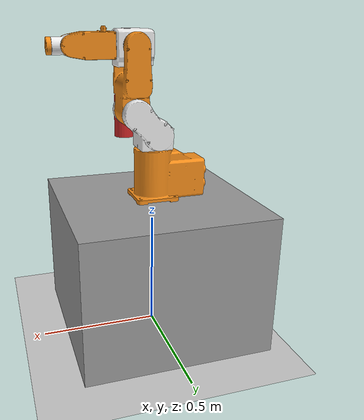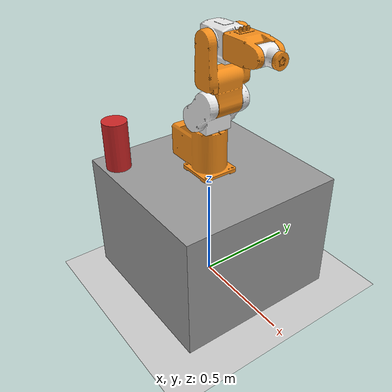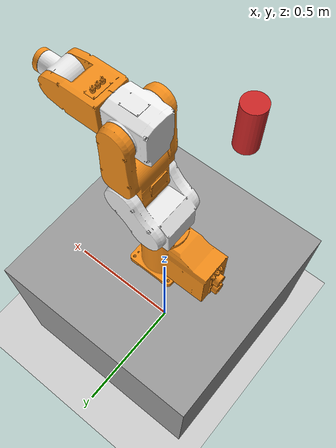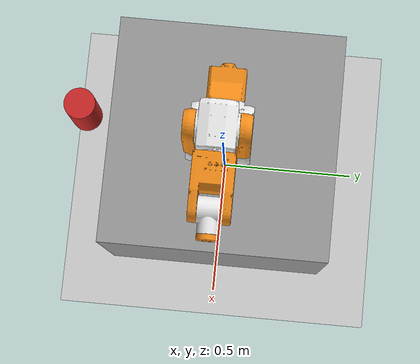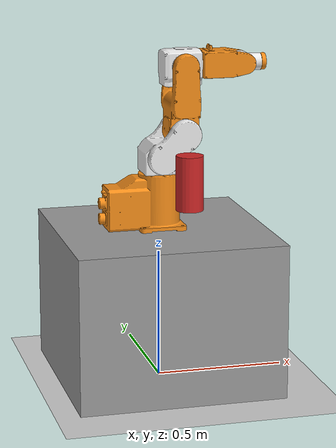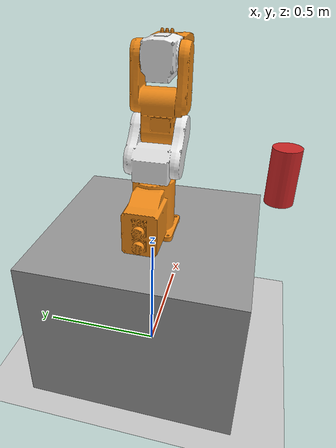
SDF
<sdf version="1.6">
 <world name="rr_world">
  <plugin filename="libgazebo_ros_world_control.so" name="world_control_plugin"/>
  <include><uri>model://sun</uri></include>
  <include><uri>model://ground_plane</uri></include>
  <model name="can">
   <pose>0.0 -0.45 0.875 0 0 0</pose>
   <static>true</static>
   <link name="link">
    <visual name="visual">
     <geometry><cylinder><radius>0.05</radius><length>0.2</length></cylinder></geometry>
     <material>
      <script><name>Gazebo/Red</name><uri>file://media/materials/scripts/gazebo.material</uri></script>
     </material>
    </visual>
   </link>
  </model>
  <model name="cam_1">
   <pose>1.009464 -1.101092 1.505751 0.071688 0.490246 2.440701</pose>
   <include><uri>model://fix_camera</uri></include>
  </model>
  <model name="cam_2">
   <pose>-0.356332 -1.588751 1.863204 0.111956 0.690027 1.281356</pose>
   <include><uri>model://fix_camera</uri></include>
  </model>
  <model name="rr_arm"><include><uri>model://rr6</uri></include></model>
 </world>
</sdf>

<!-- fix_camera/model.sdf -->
<sdf version="1.4">
  <model name="camera">
    <static>true</static>
    <pose>0 0 0 -1.5707963267948966 0 -1.5707963267948966</pose>
    <link name="link">
      <pose>0 0 0 0 0 0</pose>
          <sensor type="camera" name="my_sensor">
            <update_rate>10</update_rate>
          <pose>0 0 0 0 -1.5707963267948966 1.5707963267948966</pose>
          <camera>
            <horizontal_fov>1.047198</horizontal_fov>
            <image>
              <width>1280</width>
              <height>960</height>
            </image>
            <clip>
              <near>0.001</near>
              <far>10</far>
            </clip>
          </camera>
          <plugin filename="libgazebo_ros_rgb_camera.so" name="camera_plugin" />
          <always_on>1</always_on>
          <visualize>true</visualize>
        </sensor>

    </link>
  </model>
</sdf>

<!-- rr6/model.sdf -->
<sdf version='1.6'>
  <model name='rr6'>
    <link name='table_link'>
      <pose frame=''>0 0 0.6 0 -0 0</pose>
      <inertial>
        <pose frame=''>-0.000409 -0 0.000507 0 -0 0</pose>
        <mass>1005.14</mass>
        <inertia>
          <ixx>74.2514</ixx>
          <ixy>1.43459e-06</ixy>
          <ixz>0.0385426</ixz>
          <iyy>74.3223</iyy>
          <iyz>6.71673e-06</iyz>
          <izz>106.764</izz>
        </inertia>
      </inertial>
      <collision name='table_link_collision'>
        <pose frame=''>0 0 -0.25 0 -0 0</pose>
        <geometry>
          <box>
            <size>0.8 0.8 0.5</size>
          </box>
        </geometry>
        <surface>
          <contact>
            <ode/>
          </contact>
          <friction>
            <ode/>
          </friction>
        </surface>
      </collision>
      <collision name='table_link_fixed_joint_lump__rr6_link0_collision_1'>
        <pose frame=''>0 0 0 0 -0 0</pose>
        <geometry>
          <mesh>
            <scale>1 1 1</scale>
            <uri>model://rr6/meshes/rr6_link0.STL</uri>
          </mesh>
        </geometry>
        <surface>
          <contact>
            <ode/>
          </contact>
          <friction>
            <ode/>
          </friction>
        </surface>
      </collision>
      <visual name='table_link_visual'>
        <pose frame=''>0 0 -0.3 0 -0 0</pose>
        <geometry>
          <box>
            <size>0.8 0.8 0.6</size>
          </box>
        </geometry>
        <material>
          <script>
            <name>Gazebo/Grey</name>
            <uri>file://rr6/materials/scripts/gazebo.material</uri>
          </script>
        </material>
      </visual>
      <visual name='table_link_fixed_joint_lump__rr6_link0_visual_1'>
        <pose frame=''>0 0 0 0 -0 0</pose>
        <geometry>
          <mesh>
            <scale>1 1 1</scale>
            <uri>model://rr6/meshes/rr6_link0.STL</uri>
          </mesh>
        </geometry>
        <material>
          <script>
            <name>Gazebo/Orange</name>
            <uri>file://rr6/materials/scripts/gazebo.material</uri>
          </script>
        </material>
      </visual>
      <velocity_decay/>
      <self_collide>0</self_collide>
      <gravity>1</gravity>
      <velocity_decay/>
    </link>
    <joint name='fixed1' type='fixed'>
      <child>table_link</child>
      <parent>world</parent>
    </joint>
    <link name='rr6_link1'>
      <pose frame=''>0 0 0.96989 0 -0 0</pose>
      <inertial>
        <pose frame=''>0.023895 -0.002519 -0.068699 0 -0 0</pose>
        <mass>2.00634</mass>
        <inertia>
          <ixx>0.0143834</ixx>
          <ixy>0.000402838</ixy>
          <ixz>-0.00291028</ixz>
          <iyy>0.0135733</iyy>
          <iyz>0.000283167</iyz>
          <izz>0.0145487</izz>
        </inertia>
      </inertial>
      <collision name='rr6_link1_collision'>
        <pose frame=''>0 0 0 0 -0 0</pose>
        <geometry>
          <mesh>
            <scale>1 1 1</scale>
            <uri>model://rr6/meshes/rr6_link1.STL</uri>
          </mesh>
        </geometry>
        <surface>
          <contact>
            <ode/>
          </contact>
          <friction>
            <ode/>
          </friction>
        </surface>
      </collision>
      <visual name='rr6_link1_visual'>
        <pose frame=''>0 0 0 0 -0 0</pose>
        <geometry>
          <mesh>
            <scale>1 1 1</scale>
            <uri>model://rr6/meshes/rr6_link1.STL</uri>
          </mesh>
        </geometry>
        <material>
          <script>
            <name>Gazebo/White</name>
            <uri>file://rr6/materials/scripts/gazebo.material</uri>
          </script>
        </material>
      </visual>
      <gravity>1</gravity>
      <velocity_decay/>
    </link>
    <joint name='rr6_joint1' type='revolute'>
      <child>rr6_link1</child>
      <parent>table_link</parent>
      <axis>
        <xyz>0 0 1</xyz>
        <limit>
          <lower>-3.14159</lower>
          <upper>3.14159</upper>
          <effort>635993</effort>
          <velocity>8.72665</velocity>
        </limit>
        <dynamics>
          <spring_reference>0</spring_reference>
          <spring_stiffness>0</spring_stiffness>
        </dynamics>
        <use_parent_model_frame>1</use_parent_model_frame>
      </axis>
    </joint>
    <link name='rr6_link2'>
      <pose frame=''>0.0884 0 0.96989 1.57079 -1.57079 3.14159</pose>
      <inertial>
        <pose frame=''>0.101428 0.000333 0.002303 0 -0 0</pose>
        <mass>2.5441</mass>
        <inertia>
          <ixx>0.0123848</ixx>
          <ixy>6.29791e-05</ixy>
          <ixz>5.21448e-05</ixz>
          <iyy>0.0314854</iyy>
          <iyz>1.28638e-05</iyz>
          <izz>0.0269248</izz>
        </inertia>
      </inertial>
      <collision name='rr6_link2_collision'>
        <pose frame=''>0 0 0 0 -0 0</pose>
        <geometry>
          <mesh>
            <scale>1 1 1</scale>
            <uri>model://rr6/meshes/rr6_link2.STL</uri>
          </mesh>
        </geometry>
        <surface>
          <contact>
            <ode/>
          </contact>
          <friction>
            <ode/>
          </friction>
        </surface>
      </collision>
      <visual name='rr6_link2_visual'>
        <pose frame=''>0 0 0 0 -0 0</pose>
        <geometry>
          <mesh>
            <scale>1 1 1</scale>
            <uri>model://rr6/meshes/rr6_link2.STL</uri>
          </mesh>
        </geometry>
        <material>
          <script>
            <name>Gazebo/Orange</name>
            <uri>file://rr6/materials/scripts/gazebo.material</uri>
          </script>
        </material>
      </visual>
      <gravity>1</gravity>
      <velocity_decay/>
    </link>
    <joint name='rr6_joint2' type='revolute'>
      <child>rr6_link2</child>
      <parent>rr6_link1</parent>
      <axis>
        <xyz>-0 1 -0</xyz>
        <limit>
          <lower>-0.890118</lower>
          <upper>2.19999</upper>
          <effort>460906</effort>
          <velocity>8.72665</velocity>
        </limit>
        <dynamics>
          <spring_reference>0</spring_reference>
          <spring_stiffness>0</spring_stiffness>
        </dynamics>
        <use_parent_model_frame>1</use_parent_model_frame>
      </axis>
    </joint>
    <link name='rr6_link3'>
      <pose frame=''>0.0884 0 1.22989 1.57079 -1.57079 3.14159</pose>
      <inertial>
        <pose frame=''>-0.008125 0.011638 0.001883 0 -0 0</pose>
        <mass>1.17218</mass>
        <inertia>
          <ixx>0.00438154</ixx>
          <ixy>-1.41093e-05</ixy>
          <ixz>-2.08226e-05</ixz>
          <iyy>0.00455094</iyy>
          <iyz>-3.32515e-05</iyz>
          <izz>0.00492817</izz>
        </inertia>
      </inertial>
      <collision name='rr6_link3_collision'>
        <pose frame=''>0 0 0 0 -0 0</pose>
        <geometry>
          <mesh>
            <scale>1 1 1</scale>
            <uri>model://rr6/meshes/rr6_link3.STL</uri>
          </mesh>
        </geometry>
        <surface>
          <contact>
            <ode/>
          </contact>
          <friction>
            <ode/>
          </friction>
        </surface>
      </collision>
      <visual name='rr6_link3_visual'>
        <pose frame=''>0 0 0 0 -0 0</pose>
        <geometry>
          <mesh>
            <scale>1 1 1</scale>
            <uri>model://rr6/meshes/rr6_link3.STL</uri>
          </mesh>
        </geometry>
        <material>
          <script>
            <name>Gazebo/White</name>
            <uri>file://rr6/materials/scripts/gazebo.material</uri>
          </script>
        </material>
      </visual>
      <gravity>1</gravity>
      <velocity_decay/>
    </link>
    <joint name='rr6_joint3' type='revolute'>
      <child>rr6_link3</child>
      <parent>rr6_link2</parent>
      <axis>
        <xyz>-0 1 -0</xyz>
        <limit>
          <lower>-3.59992</lower>
          <upper>0.59987</upper>
          <effort>238892</effort>
          <velocity>8.72665</velocity>
        </limit>
        <dynamics>
          <spring_reference>0</spring_reference>
          <spring_stiffness>0</spring_stiffness>
        </dynamics>
        <use_parent_model_frame>1</use_parent_model_frame>
      </axis>
    </joint>
    <link name='rr6_link4'>
      <pose frame=''>0.3294 0 1.22989 0 -1.57079 3.14159</pose>
      <inertial>
        <pose frame=''>0.004664 0.004229 -0.088618 0 -0 0</pose>
        <mass>1.04031</mass>
        <inertia>
          <ixx>0.00527621</ixx>
          <ixy>5.38548e-05</ixy>
          <ixz>0.000185559</ixz>
          <iyy>0.00518564</iyy>
          <iyz>-0.00018345</iyz>
          <izz>0.00282202</izz>
        </inertia>
      </inertial>
      <collision name='rr6_link4_collision'>
        <pose frame=''>0 0 0 0 -0 0</pose>
        <geometry>
          <mesh>
            <scale>1 1 1</scale>
            <uri>model://rr6/meshes/rr6_link4.STL</uri>
          </mesh>
        </geometry>
        <surface>
          <contact>
            <ode/>
          </contact>
          <friction>
            <ode/>
          </friction>
        </surface>
      </collision>
      <visual name='rr6_link4_visual'>
        <pose frame=''>0 0 0 0 -0 0</pose>
        <geometry>
          <mesh>
            <scale>1 1 1</scale>
            <uri>model://rr6/meshes/rr6_link4.STL</uri>
          </mesh>
        </geometry>
        <material>
          <script>
            <name>Gazebo/Orange</name>
            <uri>file://rr6/materials/scripts/gazebo.material</uri>
          </script>
        </material>
      </visual>
      <gravity>1</gravity>
      <velocity_decay/>
    </link>
    <joint name='rr6_joint4' type='revolute'>
      <child>rr6_link4</child>
      <parent>rr6_link3</parent>
      <axis>
        <xyz>1 0 -0</xyz>
        <limit>
          <lower>-3.14159</lower>
          <upper>3.14159</upper>
          <effort>136599</effort>
          <velocity>8.72665</velocity>
        </limit>
        <dynamics>
          <spring_reference>0</spring_reference>
          <spring_stiffness>0</spring_stiffness>
        </dynamics>
        <use_parent_model_frame>1</use_parent_model_frame>
      </axis>
    </joint>
    <link name='rr6_link5'>
      <pose frame=''>0.3294 0 1.22989 1.57079 -1.57079 3.14159</pose>
      <inertial>
        <pose frame=''>-1e-05 0.014655 -0.001176 0 -0 0</pose>
        <mass>0.49536</mass>
        <inertia>
          <ixx>0.000610482</ixx>
          <ixy>2.41428e-07</ixy>
          <ixz>1.50483e-07</ixz>
          <iyy>0.000428578</iyy>
          <iyz>-8.79101e-06</iyz>
          <izz>0.000740887</izz>
        </inertia>
      </inertial>
      <collision name='rr6_link5_collision'>
        <pose frame=''>0 0 0 0 -0 0</pose>
        <geometry>
          <mesh>
            <scale>1 1 1</scale>
            <uri>model://rr6/meshes/rr6_link5.STL</uri>
          </mesh>
        </geometry>
        <surface>
          <contact>
            <ode/>
          </contact>
          <friction>
            <ode/>
          </friction>
        </surface>
      </collision>
      <visual name='rr6_link5_visual'>
        <pose frame=''>0 0 0 0 -0 0</pose>
        <geometry>
          <mesh>
            <scale>1 1 1</scale>
            <uri>model://rr6/meshes/rr6_link5.STL</uri>
          </mesh>
        </geometry>
        <material>
          <script>
            <name>Gazebo/White</name>
            <uri>file://rr6/materials/scripts/gazebo.material</uri>
          </script>
        </material>
      </visual>
      <gravity>1</gravity>
      <velocity_decay/>
    </link>
    <joint name='rr6_joint5' type='revolute'>
      <child>rr6_link5</child>
      <parent>rr6_link4</parent>
      <axis>
        <xyz>-0 1 -0</xyz>
        <limit>
          <lower>-1.74533</lower>
          <upper>1.74533</upper>
          <effort>45815.3</effort>
          <velocity>8.72665</velocity>
        </limit>
        <dynamics>
          <spring_reference>0</spring_reference>
          <spring_stiffness>0</spring_stiffness>
        </dynamics>
        <use_parent_model_frame>1</use_parent_model_frame>
      </axis>
    </joint>
    <link name='rr6_link6'>
      <pose frame=''>0.4184 0 1.22989 0 -1.57079 3.14159</pose>
      <inertial>
        <pose frame=''>0 -4.9e-05 -0.006095 0 -0 0</pose>
        <mass>0.0296445</mass>
        <inertia>
          <ixx>9.71075e-06</ixx>
          <ixy>-1.16765e-13</ixy>
          <ixz>4.13768e-15</ixz>
          <iyy>9.75718e-06</iyy>
          <iyz>-7.41228e-09</iyz>
          <izz>1.83481e-05</izz>
        </inertia>
      </inertial>
      <collision name='rr6_link6_collision'>
        <pose frame=''>0 0 0 0 -0 0</pose>
        <geometry>
          <mesh>
            <scale>1 1 1</scale>
            <uri>model://rr6/meshes/rr6_link6.STL</uri>
          </mesh>
        </geometry>
        <surface>
          <contact>
            <ode/>
          </contact>
          <friction>
            <ode/>
          </friction>
        </surface>
      </collision>
      <visual name='rr6_link6_visual'>
        <pose frame=''>0 0 0 0 -0 0</pose>
        <geometry>
          <mesh>
            <scale>1 1 1</scale>
            <uri>model://rr6/meshes/rr6_link6.STL</uri>
          </mesh>
        </geometry>
        <material>
          <script>
            <name>Gazebo/Orange</name>
            <uri>file://rr6/materials/scripts/gazebo.material</uri>
          </script>
        </material>
      </visual>
      <gravity>1</gravity>
      <velocity_decay/>
    </link>
    <joint name='rr6_joint6' type='revolute'>
      <child>rr6_link6</child>
      <parent>rr6_link5</parent>
      <axis>
        <xyz>1 0 -0</xyz>
        <limit>
          <lower>-6.28319</lower>
          <upper>6.28319</upper>
          <effort>2586.97</effort>
          <velocity>8.72665</velocity>
        </limit>
        <dynamics>
          <spring_reference>0</spring_reference>
          <spring_stiffness>0</spring_stiffness>
        </dynamics>
        <use_parent_model_frame>1</use_parent_model_frame>
      </axis>
    </joint>
    <static>0</static>
    <plugin name='gazebo_ros_control' filename='libgazebo_ros_robot_control.so'>
      <ConfigFile>/home/zhyp/.gazebo/models/rr6/config.yaml</ConfigFile>
    </plugin>
  </model>
</sdf>
